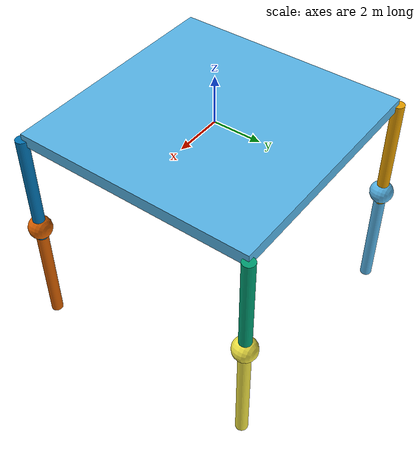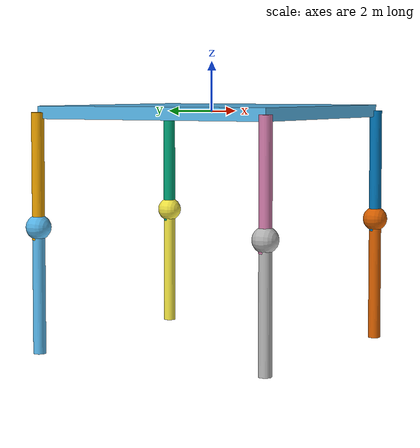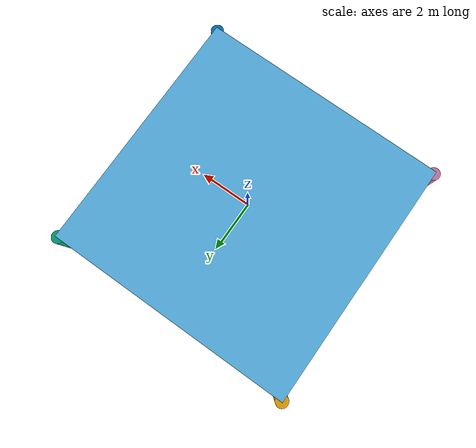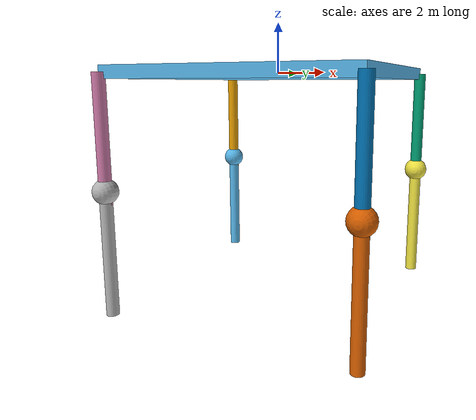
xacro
<?xml version="1.0"?>
<robot xmlns:xacro="http://www.ros.org/wiki/xacro" name="me">

    <!-- Xacro defn for a leg -->
    <xacro:macro name="leg" params="leg_no *origin">
        <joint name="rota_${leg_no}" type="continuous">
            <parent link="chassis"/>
            <child link="leg_${leg_no}"/>
            <axis xyz="0 0 1"/>
            <xacro:insert_block name="origin" />
        </joint>
        <joint name="knee_${leg_no}" type="revolute">
            <parent link="leg_${leg_no}"/>
            <child link="ankle_${leg_no}"/>
            <axis xyz="0 0 1"/>
            <limit lower="-3.14159" upper="3.14159" velocity="50.0" effort="1000.0"/>
            <origin xyz="0 4.5 0" rpy="0 0 0"/>
        </joint>
        <link name="leg_${leg_no}">
            <collision>
                <origin xyz="0.0 2.5 0" rpy="1.57 0.0 0.0"/>
                <geometry>
                    <cylinder radius="0.25" length="5"/>
                </geometry>
            </collision>
            <visual>
                <origin xyz="0.0 2.5 0" rpy="1.57 0.0 0"/>
                <geometry>
                    <cylinder radius="0.25" length="5"/>
                </geometry>
            </visual>
            <inertial>
                <mass value="10"/>
                <inertia ixx="1" ixy="0" ixz="0" iyy="1" iyz="0" izz="1"/>
            </inertial>
        </link>
        <link name="ankle_${leg_no}">
            <collision>
                <origin xyz="0.0 2.5 0.0" rpy="1.57 0.0 0.0"/>
                <geometry>
                    <cylinder radius="0.25" length="5"/>
                </geometry>
            </collision>
            <visual>
                <origin xyz="0.0 2.5 0.0" rpy="1.57 0.0 0.0"/>
                <geometry>
                    <cylinder radius="0.25" length="5"/>
                </geometry>
            </visual>
            <visual>
                <origin xyz="0 0 0.0" rpy="0.0 0.0 0.0"/>

                <geometry>
                    <sphere radius="0.5"/>
                </geometry>
            </visual>
            <inertial>
                <mass value="10"/>
                <inertia ixx="1" ixy="0" ixz="0" iyy="1" iyz="0" izz="1"/>
            </inertial>
        </link>
    </xacro:macro>
    <!-- fixed frame and link without xacro -->
    <link name="map"/>
    <joint name="fixed" type="fixed">
        <parent link="map"/>
        <child link="chassis"/>
        <origin xyz="0.0 0.0 0.0" rpy="0.0 0.0 0.0"/>
    </joint>
    <link name="chassis">
        <collision>
            <origin xyz="0.0 0.0 0.0" rpy="0.0 0.0 0.0"/>
            <geometry>
                <box size="10.0 10.0 0.5"/>
            </geometry>
        </collision>
        <visual>
            <origin xyz="0.0 0.0 0.0" rpy="0.0 0.0 0.0"/>
            <geometry>
                <box size="10.0 10.0 0.5"/>
            </geometry>
        </visual>
        <inertial>
            <mass value="10"/>
            <inertia ixx="1" ixy="0" ixz="0" iyy="1" iyz="0" izz="1"/>
        </inertial>
    </link>
    <!-- leg links with xacro -->
    <xacro:leg leg_no='1'>
        <origin xyz="5 5 0" rpy="-1.57 0 3.14"/>
    </xacro:leg>
    <xacro:leg leg_no='2'>
        <origin xyz="5 -5 0" rpy="-1.57 0 3.14"/>
    </xacro:leg>
    <xacro:leg leg_no='3'>
        <origin xyz="-5 -5 0" rpy="-1.57 0 3.14"/>
    </xacro:leg>
    <xacro:leg leg_no='4'>
        <origin xyz="-5 5 0" rpy="-1.57 0 3.14"/>
    </xacro:leg>

</robot>
